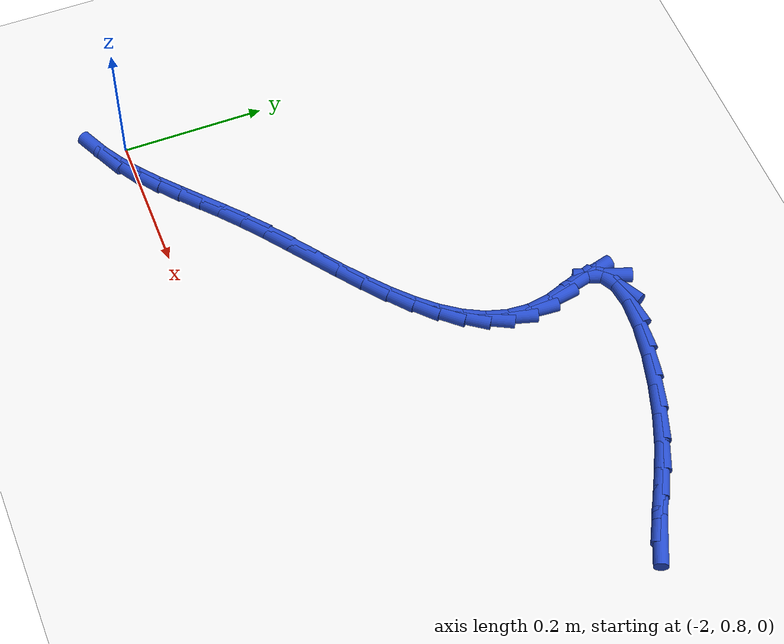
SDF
<sdf version="1.6">
 <world name="default">
  <model name="ground_plane">
   <static>1</static>
   <link name="link">
    <collision name="collision">
     <geometry><plane><normal>0 0 1</normal><size>100 100</size></plane></geometry>
     <surface><friction><ode><mu>100</mu><mu2>50</mu2></ode></friction></surface>
    </collision>
    <visual name="visual">
     <cast_shadows>0</cast_shadows>
     <geometry><plane><normal>0 0 1</normal><size>100 100</size></plane></geometry>
     <material>
      <script><uri>file://media/materials/scripts/gazebo.material</uri><name>Gazebo/WhiteGlow</name></script>
     </material>
    </visual>
   </link>
  </model>
  <model name="line">
   <link name="link_67">
    <pose>-1.1747741862152925 1.2388586098087726 0.01 0 1.57 -0.4179214696370899</pose>
    <collision name="collision">
     <geometry><cylinder><radius>0.01</radius><length>0.08</length></cylinder></geometry>
    </collision>
    <visual name="visual">
     <material>
      <script><name>Gazebo/Blue</name><uri>file://media/materials/scripts/gazebo.material</uri></script>
     </material>
     <geometry><cylinder><radius>0.01</radius><length>0.08</length></cylinder></geometry>
    </visual>
   </link>
   <link name="link_68">
    <pose>-1.2026369050497732 1.2512319363957192 0.01 0 1.57 -0.482204271727391</pose>
    <collision name="collision">
     <geometry><cylinder><radius>0.01</radius><length>0.08</length></cylinder></geometry>
    </collision>
    <visual name="visual">
     <material>
      <script><name>Gazebo/Blue</name><uri>file://media/materials/scripts/gazebo.material</uri></script>
     </material>
     <geometry><cylinder><radius>0.01</radius><length>0.08</length></cylinder></geometry>
    </visual>
   </link>
   <link name="link_69">
    <pose>-1.2306165343958104 1.2658769157890049 0.01 0 1.57 -0.48687240520562197</pose>
    <collision name="collision">
     <geometry><cylinder><radius>0.01</radius><length>0.08</length></cylinder></geometry>
    </collision>
    <visual name="visual">
     <material>
      <script><name>Gazebo/Blue</name><uri>file://media/materials/scripts/gazebo.material</uri></script>
     </material>
     <geometry><cylinder><radius>0.01</radius><length>0.08</length></cylinder></geometry>
    </visual>
   </link>
   <link name="link_70">
    <pose>-1.2608500643466436 1.2818818638631737 0.01 0 1.57 -0.4436046245265949</pose>
    <collision name="collision">
     <geometry><cylinder><radius>0.01</radius><length>0.08</length></cylinder></geometry>
    </collision>
    <visual name="visual">
     <material>
      <script><name>Gazebo/Blue</name><uri>file://media/materials/scripts/gazebo.material</uri></script>
     </material>
     <geometry><cylinder><radius>0.01</radius><length>0.08</length></cylinder></geometry>
    </visual>
   </link>
   <link name="link_71">
    <pose>-1.2954744849955138 1.2983350964927705 0.01 0 1.57 -0.37551782669026795</pose>
    <collision name="collision">
     <geometry><cylinder><radius>0.01</radius><length>0.08</length></cylinder></geometry>
    </collision>
    <visual name="visual">
     <material>
      <script><name>Gazebo/Blue</name><uri>file://media/materials/scripts/gazebo.material</uri></script>
     </material>
     <geometry><cylinder><radius>0.01</radius><length>0.08</length></cylinder></geometry>
    </visual>
   </link>
   <link name="link_72">
    <pose>-1.3359453183276713 1.314289700954569 0.01 0 1.57 -0.312136390125347</pose>
    <collision name="collision">
     <geometry><cylinder><radius>0.01</radius><length>0.08</length></cylinder></geometry>
    </collision>
    <visual name="visual">
     <material>
      <script><name>Gazebo/Blue</name><uri>file://media/materials/scripts/gazebo.material</uri></script>
     </material>
     <geometry><cylinder><radius>0.01</radius><length>0.08</length></cylinder></geometry>
    </visual>
   </link>
   <link name="link_73">
    <pose>-1.3803730166859505 1.328625840640038 0.01 0 1.57 -0.24864488955590802</pose>
    <collision name="collision">
     <geometry><cylinder><radius>0.01</radius><length>0.08</length></cylinder></geometry>
    </collision>
    <visual name="visual">
     <material>
      <script><name>Gazebo/Blue</name><uri>file://media/materials/scripts/gazebo.material</uri></script>
     </material>
     <geometry><cylinder><radius>0.01</radius><length>0.08</length></cylinder></geometry>
    </visual>
   </link>
   <link name="link_74">
    <pose>-1.4258433351603816 1.3401707070598883 0.01 0 1.57 -0.17215598530925108</pose>
    <collision name="collision">
     <geometry><cylinder><radius>0.01</radius><length>0.08</length></cylinder></geometry>
    </collision>
    <visual name="visual">
     <material>
      <script><name>Gazebo/Blue</name><uri>file://media/materials/scripts/gazebo.material</uri></script>
     </material>
     <geometry><cylinder><radius>0.01</radius><length>0.08</length></cylinder></geometry>
    </visual>
   </link>
   <link name="link_75">
    <pose>-1.469441763519032 1.3477514780089723 0.01 0 1.57 -0.06288337123225225</pose>
    <collision name="collision">
     <geometry><cylinder><radius>0.01</radius><length>0.08</length></cylinder></geometry>
    </collision>
    <visual name="visual">
     <material>
      <script><name>Gazebo/Blue</name><uri>file://media/materials/scripts/gazebo.material</uri></script>
     </material>
     <geometry><cylinder><radius>0.01</radius><length>0.08</length></cylinder></geometry>
    </visual>
   </link>
   <link name="link_76">
    <pose>-1.5082537915299699 1.3501953312821426 0.01 0 1.57 0.12362691928695003</pose>
    <collision name="collision">
     <geometry><cylinder><radius>0.01</radius><length>0.08</length></cylinder></geometry>
    </collision>
    <visual name="visual">
     <material>
      <script><name>Gazebo/Blue</name><uri>file://media/materials/scripts/gazebo.material</uri></script>
     </material>
     <geometry><cylinder><radius>0.01</radius><length>0.08</length></cylinder></geometry>
    </visual>
   </link>
   <link name="link_77">
    <pose>-1.5393649089612629 1.346329444674252 0.01 0 1.57 0.5056787712496645</pose>
    <collision name="collision">
     <geometry><cylinder><radius>0.01</radius><length>0.08</length></cylinder></geometry>
    </collision>
    <visual name="visual">
     <material>
      <script><name>Gazebo/Blue</name><uri>file://media/materials/scripts/gazebo.material</uri></script>
     </material>
     <geometry><cylinder><radius>0.01</radius><length>0.08</length></cylinder></geometry>
    </visual>
   </link>
   <link name="link_78">
    <pose>-1.5598606055809792 1.3349809959801524 0.01 0 1.57 1.2357067571721632</pose>
    <collision name="collision">
     <geometry><cylinder><radius>0.01</radius><length>0.08</length></cylinder></geometry>
    </collision>
    <visual name="visual">
     <material>
      <script><name>Gazebo/Blue</name><uri>file://media/materials/scripts/gazebo.material</uri></script>
     </material>
     <geometry><cylinder><radius>0.01</radius><length>0.08</length></cylinder></geometry>
    </visual>
   </link>
   <link name="link_79">
    <pose>-1.5668263711571861 1.3149771629946962 0.01 0 1.57 -1.3102529220117867</pose>
    <collision name="collision">
     <geometry><cylinder><radius>0.01</radius><length>0.08</length></cylinder></geometry>
    </collision>
    <visual name="visual">
     <material>
      <script><name>Gazebo/Blue</name><uri>file://media/materials/scripts/gazebo.material</uri></script>
     </material>
     <geometry><cylinder><radius>0.01</radius><length>0.08</length></cylinder></geometry>
    </visual>
   </link>
   <link name="link_80">
    <pose>-1.5590845135645393 1.2859383169284322 0.01 0 1.57 -1.2259217823920447</pose>
    <collision name="collision">
     <geometry><cylinder><radius>0.01</radius><length>0.08</length></cylinder></geometry>
    </collision>
    <visual name="visual">
     <material>
      <script><name>Gazebo/Blue</name><uri>file://media/materials/scripts/gazebo.material</uri></script>
     </material>
     <geometry><cylinder><radius>0.01</radius><length>0.08</length></cylinder></geometry>
    </visual>
   </link>
   <link name="link_81">
    <pose>-1.5471968218310541 1.2528462525622603 0.01 0 1.57 -1.4088029715980532</pose>
    <collision name="collision">
     <geometry><cylinder><radius>0.01</radius><length>0.08</length></cylinder></geometry>
    </collision>
    <visual name="visual">
     <material>
      <script><name>Gazebo/Blue</name><uri>file://media/materials/scripts/gazebo.material</uri></script>
     </material>
     <geometry><cylinder><radius>0.01</radius><length>0.08</length></cylinder></geometry>
    </visual>
   </link>
   <link name="link_82">
    <pose>-1.5419606893578979 1.220806356800604 0.01 0 1.57 1.505582988976819</pose>
    <collision name="collision">
     <geometry><cylinder><radius>0.01</radius><length>0.08</length></cylinder></geometry>
    </collision>
    <visual name="visual">
     <material>
      <script><name>Gazebo/Blue</name><uri>file://media/materials/scripts/gazebo.material</uri></script>
     </material>
     <geometry><cylinder><radius>0.01</radius><length>0.08</length></cylinder></geometry>
    </visual>
   </link>
   <link name="link_83">
    <pose>-1.543953468428901 1.190291842647732 0.01 0 1.57 1.2890413868446606</pose>
    <collision name="collision">
     <geometry><cylinder><radius>0.01</radius><length>0.08</length></cylinder></geometry>
    </collision>
    <visual name="visual">
     <material>
      <script><name>Gazebo/Blue</name><uri>file://media/materials/scripts/gazebo.material</uri></script>
     </material>
     <geometry><cylinder><radius>0.01</radius><length>0.08</length></cylinder></geometry>
    </visual>
   </link>
   <link name="link_84">
    <pose>-1.5523867369889974 1.1611568866221043 0.01 0 1.57 1.103293261546374</pose>
    <collision name="collision">
     <geometry><cylinder><radius>0.01</radius><length>0.08</length></cylinder></geometry>
    </collision>
    <visual name="visual">
     <material>
      <script><name>Gazebo/Blue</name><uri>file://media/materials/scripts/gazebo.material</uri></script>
     </material>
     <geometry><cylinder><radius>0.01</radius><length>0.08</length></cylinder></geometry>
    </visual>
   </link>
   <link name="link_85">
    <pose>-1.5664720729831216 1.13325566524218 0.01 0 1.57 0.9555874834113489</pose>
    <collision name="collision">
     <geometry><cylinder><radius>0.01</radius><length>0.08</length></cylinder></geometry>
    </collision>
    <visual name="visual">
     <material>
      <script><name>Gazebo/Blue</name><uri>file://media/materials/scripts/gazebo.material</uri></script>
     </material>
     <geometry><cylinder><radius>0.01</radius><length>0.08</length></cylinder></geometry>
    </visual>
   </link>
   <link name="link_86">
    <pose>-1.5854210543562077 1.1064423550264177 0.01 0 1.57 0.8435591626753717</pose>
    <collision name="collision">
     <geometry><cylinder><radius>0.01</radius><length>0.08</length></cylinder></geometry>
    </collision>
    <visual name="visual">
     <material>
      <script><name>Gazebo/Blue</name><uri>file://media/materials/scripts/gazebo.material</uri></script>
     </material>
     <geometry><cylinder><radius>0.01</radius><length>0.08</length></cylinder></geometry>
    </visual>
   </link>
   <link name="link_87">
    <pose>-1.6084452590531906 1.0805711324932776 0.01 0 1.57 0.7613486133042878</pose>
    <collision name="collision">
     <geometry><cylinder><radius>0.01</radius><length>0.08</length></cylinder></geometry>
    </collision>
    <visual name="visual">
     <material>
      <script><name>Gazebo/Blue</name><uri>file://media/materials/scripts/gazebo.material</uri></script>
     </material>
     <geometry><cylinder><radius>0.01</radius><length>0.08</length></cylinder></geometry>
    </visual>
   </link>
   <link name="link_88">
    <pose>-1.6347562650190037 1.0554961741612183 0.01 0 1.57 0.7032138651859747</pose>
    <collision name="collision">
     <geometry><cylinder><radius>0.01</radius><length>0.08</length></cylinder></geometry>
    </collision>
    <visual name="visual">
     <material>
      <script><name>Gazebo/Blue</name><uri>file://media/materials/scripts/gazebo.material</uri></script>
     </material>
     <geometry><cylinder><radius>0.01</radius><length>0.08</length></cylinder></geometry>
    </visual>
   </link>
   <link name="link_89">
    <pose>-1.6635656501985823 1.0310716565487 0.01 0 1.57 0.6647609921291191</pose>
    <collision name="collision">
     <geometry><cylinder><radius>0.01</radius><length>0.08</length></cylinder></geometry>
    </collision>
    <visual name="visual">
     <material>
      <script><name>Gazebo/Blue</name><uri>file://media/materials/scripts/gazebo.material</uri></script>
     </material>
     <geometry><cylinder><radius>0.01</radius><length>0.08</length></cylinder></geometry>
    </visual>
   </link>
   <link name="link_90">
    <pose>-1.6940849925368597 1.007151756174181 0.01 0 1.57 0.643103006927699</pose>
    <collision name="collision">
     <geometry><cylinder><radius>0.01</radius><length>0.08</length></cylinder></geometry>
    </collision>
    <visual name="visual">
     <material>
      <script><name>Gazebo/Blue</name><uri>file://media/materials/scripts/gazebo.material</uri></script>
     </material>
     <geometry><cylinder><radius>0.01</radius><length>0.08</length></cylinder></geometry>
    </visual>
   </link>
   <link name="link_91">
    <pose>-1.7255258699787703 0.9835906495561211 0.01 0 1.57 0.6367301845250591</pose>
    <collision name="collision">
     <geometry><cylinder><radius>0.01</radius><length>0.08</length></cylinder></geometry>
    </collision>
    <visual name="visual">
     <material>
      <script><name>Gazebo/Blue</name><uri>file://media/materials/scripts/gazebo.material</uri></script>
     </material>
     <geometry><cylinder><radius>0.01</radius><length>0.08</length></cylinder></geometry>
    </visual>
   </link>
   <link name="link_92">
    <pose>-1.7570998604692494 0.9602425132129794 0.01 0 1.57 0.6454022956828109</pose>
    <collision name="collision">
     <geometry><cylinder><radius>0.01</radius><length>0.08</length></cylinder></geometry>
    </collision>
    <visual name="visual">
     <material>
      <script><name>Gazebo/Blue</name><uri>file://media/materials/scripts/gazebo.material</uri></script>
     </material>
     <geometry><cylinder><radius>0.01</radius><length>0.08</length></cylinder></geometry>
    </visual>
   </link>
   <link name="link_93">
    <pose>-1.7880185419532306 0.9369615236632152 0.01 0 1.57 0.670166382172441</pose>
    <collision name="collision">
     <geometry><cylinder><radius>0.01</radius><length>0.08</length></cylinder></geometry>
    </collision>
    <visual name="visual">
     <material>
      <script><name>Gazebo/Blue</name><uri>file://media/materials/scripts/gazebo.material</uri></script>
     </material>
     <geometry><cylinder><radius>0.01</radius><length>0.08</length></cylinder></geometry>
    </visual>
   </link>
   <link name="link_94">
    <pose>-1.817493518385247 0.9136018672250995 0.01 0 1.57 0.7065677783787276</pose>
    <collision name="collision">
     <geometry><cylinder><radius>0.01</radius><length>0.08</length></cylinder></geometry>
    </collision>
    <visual name="visual">
     <material>
      <script><name>Gazebo/Blue</name><uri>file://media/materials/scripts/gazebo.material</uri></script>
     </material>
     <geometry><cylinder><radius>0.01</radius><length>0.08</length></cylinder></geometry>
    </visual>
   </link>
   <link name="link_95">
    <pose>-1.8450047798313687 0.8901188518612219 0.01 0 1.57 0.7315258379015893</pose>
    <collision name="collision">
     <geometry><cylinder><radius>0.01</radius><length>0.08</length></cylinder></geometry>
    </collision>
    <visual name="visual">
     <material>
      <script><name>Gazebo/Blue</name><uri>file://media/materials/scripts/gazebo.material</uri></script>
     </material>
     <geometry><cylinder><radius>0.01</radius><length>0.08</length></cylinder></geometry>
    </visual>
   </link>
   <link name="link_96">
    <pose>-1.870961833466025 0.8668180059605606 0.01 0 1.57 0.7377687750351198</pose>
    <collision name="collision">
     <geometry><cylinder><radius>0.01</radius><length>0.08</length></cylinder></geometry>
    </collision>
    <visual name="visual">
     <material>
      <script><name>Gazebo/Blue</name><uri>file://media/materials/scripts/gazebo.material</uri></script>
     </material>
     <geometry><cylinder><radius>0.01</radius><length>0.08</length></cylinder></geometry>
    </visual>
   </link>
   <link name="link_97">
    <pose>-1.8959752786860415 0.8440806247842013 0.01 0 1.57 0.7233384059626737</pose>
    <collision name="collision">
     <geometry><cylinder><radius>0.01</radius><length>0.08</length></cylinder></geometry>
    </collision>
    <visual name="visual">
     <material>
      <script><name>Gazebo/Blue</name><uri>file://media/materials/scripts/gazebo.material</uri></script>
     </material>
     <geometry><cylinder><radius>0.01</radius><length>0.08</length></cylinder></geometry>
    </visual>
   </link>
   <link name="link_98">
    <pose>-1.9206557148882464 0.8222880035932311 0.01 0 1.57 0.6868412274657975</pose>
    <collision name="collision">
     <geometry><cylinder><radius>0.01</radius><length>0.08</length></cylinder></geometry>
    </collision>
    <visual name="visual">
     <material>
      <script><name>Gazebo/Blue</name><uri>file://media/materials/scripts/gazebo.material</uri></script>
     </material>
     <geometry><cylinder><radius>0.01</radius><length>0.08</length></cylinder></geometry>
    </visual>
   </link>
   <link name="link_99">
    <pose>-1.9456137414694663 0.8018214376487361 0.01 0 1.57 0.6278331691102371</pose>
    <collision name="collision">
     <geometry><cylinder><radius>0.01</radius><length>0.08</length></cylinder></geometry>
    </collision>
    <visual name="visual">
     <material>
      <script><name>Gazebo/Blue</name><uri>file://media/materials/scripts/gazebo.material</uri></script>
     </material>
     <geometry><cylinder><radius>0.01</radius><length>0.08</length></cylinder></geometry>
    </visual>
   </link>
   <link name="link_100">
    <pose>-1.9714599578265284 0.7830622222118029 0.01 0 1.57 0.5474765469927761</pose>
    <collision name="collision">
     <geometry><cylinder><radius>0.01</radius><length>0.08</length></cylinder></geometry>
    </collision>
    <visual name="visual">
     <material>
      <script><name>Gazebo/Blue</name><uri>file://media/materials/scripts/gazebo.material</uri></script>
     </material>
     <geometry><cylinder><radius>0.01</radius><length>0.08</length></cylinder></geometry>
    </visual>
   </link>
   <link name="link_101">
    <pose>-1.9988049633562595 0.7663916525435179 0.01 0 1.57 0.44924366442053265</pose>
    <collision name="collision">
     <geometry><cylinder><radius>0.01</radius><length>0.08</length></cylinder></geometry>
    </collision>
    <visual name="visual">
     <material>
      <script><name>Gazebo/Blue</name><uri>file://media/materials/scripts/gazebo.material</uri></script>
     </material>
     <geometry><cylinder><radius>0.01</radius><length>0.08</length></cylinder></geometry>
    </visual>
   </link>
  </model>
 </world>
</sdf>
